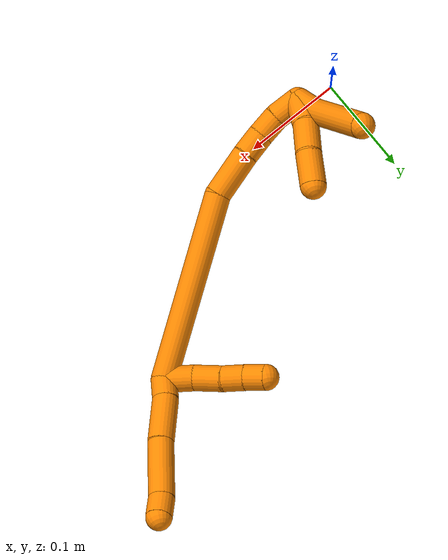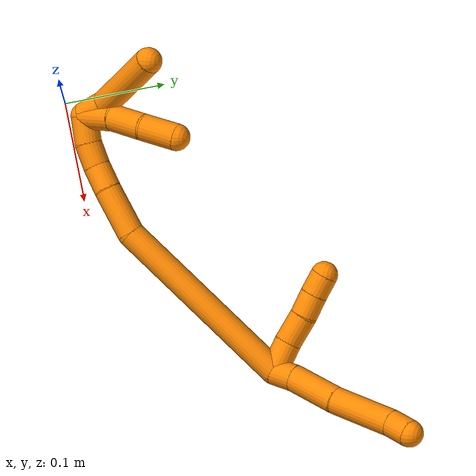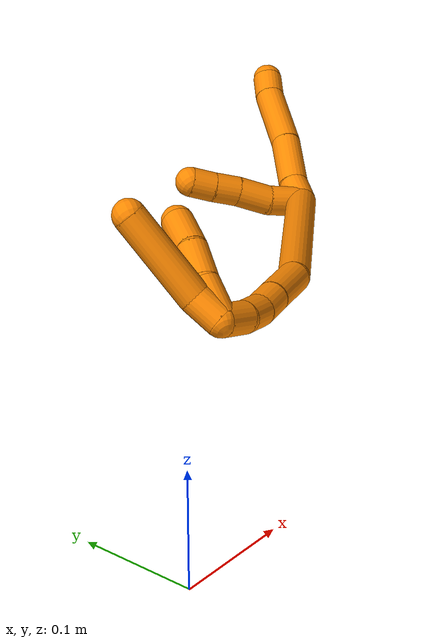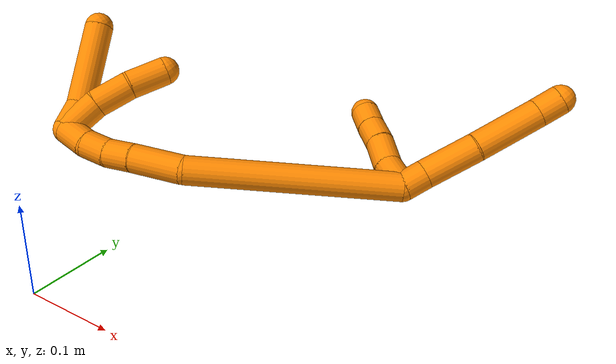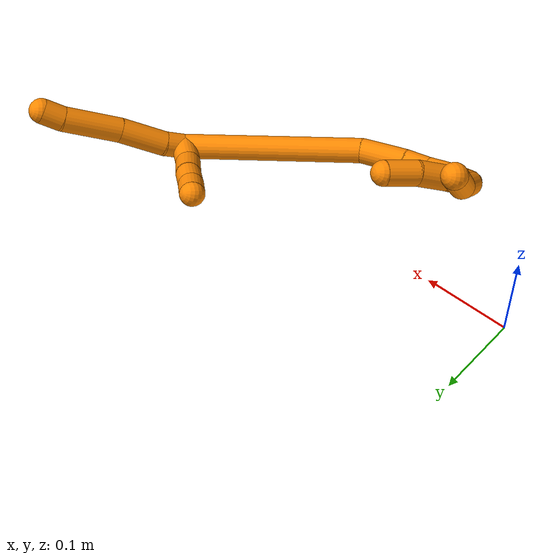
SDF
<sdf version="1.7">
 <world name="default">
  <model name="19">
   <static>0</static>
   <link name="19">
    <collision name="collision-cylinder-e_1_2_8">
     <pose>0.001761 0.000192 0.010538 -0.018198 0.165519 -0.00151</pose>
     <geometry><cylinder><radius>0.0125</radius><length>0.021372</length></cylinder></geometry>
     <surface>
      <friction><ode><mu>1.16</mu><mu2>1.16</mu2><slip1>0</slip1><slip2>0</slip2></ode></friction>
      <contact><ode><kp>1e+06</kp><kd>1</kd><max_vel>0</max_vel><min_depth>0.001</min_depth></ode></contact>
     </surface>
    </collision>
    <visual name="visual-cylinder-e_1_2_8">
     <pose>0.001761 0.000192 0.010538 -0.018198 0.165519 -0.00151</pose>
     <geometry><cylinder><radius>0.0125</radius><length>0.021372</length></cylinder></geometry>
     <material><ambient>0.996078 0.537255 0 1</ambient></material>
    </visual>
    <collision name="collision-cylinder-e_2_8_9">
     <pose>0.010205 -0.002349 0.043979 0.118752 0.282042 0.016878</pose>
     <geometry><cylinder><radius>0.0125</radius><length>0.048029</length></cylinder></geometry>
     <surface>
      <friction><ode><mu>1.16</mu><mu2>1.16</mu2><slip1>0</slip1><slip2>0</slip2></ode></friction>
      <contact><ode><kp>1e+06</kp><kd>1</kd><max_vel>0</max_vel><min_depth>0.001</min_depth></ode></contact>
     </surface>
    </collision>
    <visual name="visual-cylinder-e_2_8_9">
     <pose>0.010205 -0.002349 0.043979 0.118752 0.282042 0.016878</pose>
     <geometry><cylinder><radius>0.0125</radius><length>0.048029</length></cylinder></geometry>
     <material><ambient>0.996078 0.537255 0 1</ambient></material>
    </visual>
    <collision name="collision-cylinder-e_3_9_10">
     <pose>0.022837 -0.006057 0.095716 0.033797 0.203342 0.003448</pose>
     <geometry><cylinder><radius>0.0125</radius><length>0.058914</length></cylinder></geometry>
     <surface>
      <friction><ode><mu>1.16</mu><mu2>1.16</mu2><slip1>0</slip1><slip2>0</slip2></ode></friction>
      <contact><ode><kp>1e+06</kp><kd>1</kd><max_vel>0</max_vel><min_depth>0.001</min_depth></ode></contact>
     </surface>
    </collision>
    <visual name="visual-cylinder-e_3_9_10">
     <pose>0.022837 -0.006057 0.095716 0.033797 0.203342 0.003448</pose>
     <geometry><cylinder><radius>0.0125</radius><length>0.058914</length></cylinder></geometry>
     <material><ambient>0.996078 0.537255 0 1</ambient></material>
    </visual>
    <collision name="collision-cylinder-e_4_10_6">
     <pose>0.03174 -0.009053 0.134785 0.195007 0.275951 0.027163</pose>
     <geometry><cylinder><radius>0.0125</radius><length>0.021685</length></cylinder></geometry>
     <surface>
      <friction><ode><mu>1.16</mu><mu2>1.16</mu2><slip1>0</slip1><slip2>0</slip2></ode></friction>
      <contact><ode><kp>1e+06</kp><kd>1</kd><max_vel>0</max_vel><min_depth>0.001</min_depth></ode></contact>
     </surface>
    </collision>
    <visual name="visual-cylinder-e_4_10_6">
     <pose>0.03174 -0.009053 0.134785 0.195007 0.275951 0.027163</pose>
     <geometry><cylinder><radius>0.0125</radius><length>0.021685</length></cylinder></geometry>
     <material><ambient>0.996078 0.537255 0 1</ambient></material>
    </visual>
    <collision name="collision-cylinder-e_1_2_11">
     <pose>-0.013858 0.003381 0.003796 -0.727575 -1.2192 0.519727</pose>
     <geometry><cylinder><radius>0.0125</radius><length>0.029521</length></cylinder></geometry>
     <surface>
      <friction><ode><mu>1.16</mu><mu2>1.16</mu2><slip1>0</slip1><slip2>0</slip2></ode></friction>
      <contact><ode><kp>1e+06</kp><kd>1</kd><max_vel>0</max_vel><min_depth>0.001</min_depth></ode></contact>
     </surface>
    </collision>
    <visual name="visual-cylinder-e_1_2_11">
     <pose>-0.013858 0.003381 0.003796 -0.727575 -1.2192 0.519727</pose>
     <geometry><cylinder><radius>0.0125</radius><length>0.029521</length></cylinder></geometry>
     <material><ambient>0.996078 0.537255 0 1</ambient></material>
    </visual>
    <collision name="collision-cylinder-e_2_11_12">
     <pose>-0.040606 0.007728 0.013691 -0.157082 -1.12411 0.099056</pose>
     <geometry><cylinder><radius>0.0125</radius><length>0.028586</length></cylinder></geometry>
     <surface>
      <friction><ode><mu>1.16</mu><mu2>1.16</mu2><slip1>0</slip1><slip2>0</slip2></ode></friction>
      <contact><ode><kp>1e+06</kp><kd>1</kd><max_vel>0</max_vel><min_depth>0.001</min_depth></ode></contact>
     </surface>
    </collision>
    <visual name="visual-cylinder-e_2_11_12">
     <pose>-0.040606 0.007728 0.013691 -0.157082 -1.12411 0.099056</pose>
     <geometry><cylinder><radius>0.0125</radius><length>0.028586</length></cylinder></geometry>
     <material><ambient>0.996078 0.537255 0 1</ambient></material>
    </visual>
    <collision name="collision-cylinder-e_3_12_13">
     <pose>-0.063681 0.009902 0.023256 -0.335437 -1.22479 0.236764</pose>
     <geometry><cylinder><radius>0.0125</radius><length>0.021651</length></cylinder></geometry>
     <surface>
      <friction><ode><mu>1.16</mu><mu2>1.16</mu2><slip1>0</slip1><slip2>0</slip2></ode></friction>
      <contact><ode><kp>1e+06</kp><kd>1</kd><max_vel>0</max_vel><min_depth>0.001</min_depth></ode></contact>
     </surface>
    </collision>
    <visual name="visual-cylinder-e_3_12_13">
     <pose>-0.063681 0.009902 0.023256 -0.335437 -1.22479 0.236764</pose>
     <geometry><cylinder><radius>0.0125</radius><length>0.021651</length></cylinder></geometry>
     <material><ambient>0.996078 0.537255 0 1</ambient></material>
    </visual>
    <collision name="collision-cylinder-e_4_13_5">
     <pose>-0.083192 0.012041 0.030538 -0.239285 -1.17232 0.159312</pose>
     <geometry><cylinder><radius>0.0125</radius><length>0.020242</length></cylinder></geometry>
     <surface>
      <friction><ode><mu>1.16</mu><mu2>1.16</mu2><slip1>0</slip1><slip2>0</slip2></ode></friction>
      <contact><ode><kp>1e+06</kp><kd>1</kd><max_vel>0</max_vel><min_depth>0.001</min_depth></ode></contact>
     </surface>
    </collision>
    <visual name="visual-cylinder-e_4_13_5">
     <pose>-0.083192 0.012041 0.030538 -0.239285 -1.17232 0.159312</pose>
     <geometry><cylinder><radius>0.0125</radius><length>0.020242</length></cylinder></geometry>
     <material><ambient>0.996078 0.537255 0 1</ambient></material>
    </visual>
    <collision name="collision-cylinder-e_1_2_14">
     <pose>-0.055575 -0.026074 -0.066842 2.76967 -0.65905 -2.13573</pose>
     <geometry><cylinder><radius>0.0125</radius><length>0.181508</length></cylinder></geometry>
     <surface>
      <friction><ode><mu>1.16</mu><mu2>1.16</mu2><slip1>0</slip1><slip2>0</slip2></ode></friction>
      <contact><ode><kp>1e+06</kp><kd>1</kd><max_vel>0</max_vel><min_depth>0.001</min_depth></ode></contact>
     </surface>
    </collision>
    <visual name="visual-cylinder-e_1_2_14">
     <pose>-0.055575 -0.026074 -0.066842 2.76967 -0.65905 -2.13573</pose>
     <geometry><cylinder><radius>0.0125</radius><length>0.181508</length></cylinder></geometry>
     <material><ambient>0.996078 0.537255 0 1</ambient></material>
    </visual>
    <collision name="collision-cylinder-e_2_14_15">
     <pose>-0.130014 -0.055152 -0.146429 2.91003 -0.964058 -2.70412</pose>
     <geometry><cylinder><radius>0.0125</radius><length>0.045928</length></cylinder></geometry>
     <surface>
      <friction><ode><mu>1.16</mu><mu2>1.16</mu2><slip1>0</slip1><slip2>0</slip2></ode></friction>
      <contact><ode><kp>1e+06</kp><kd>1</kd><max_vel>0</max_vel><min_depth>0.001</min_depth></ode></contact>
     </surface>
    </collision>
    <visual name="visual-cylinder-e_2_14_15">
     <pose>-0.130014 -0.055152 -0.146429 2.91003 -0.964058 -2.70412</pose>
     <geometry><cylinder><radius>0.0125</radius><length>0.045928</length></cylinder></geometry>
     <material><ambient>0.996078 0.537255 0 1</ambient></material>
    </visual>
    <collision name="collision-cylinder-e_3_15_16">
     <pose>-0.158948 -0.058721 -0.165819 3.05694 -0.985763 -2.98422</pose>
     <geometry><cylinder><radius>0.0125</radius><length>0.024155</length></cylinder></geometry>
     <surface>
      <friction><ode><mu>1.16</mu><mu2>1.16</mu2><slip1>0</slip1><slip2>0</slip2></ode></friction>
      <contact><ode><kp>1e+06</kp><kd>1</kd><max_vel>0</max_vel><min_depth>0.001</min_depth></ode></contact>
     </surface>
    </collision>
    <visual name="visual-cylinder-e_3_15_16">
     <pose>-0.158948 -0.058721 -0.165819 3.05694 -0.985763 -2.98422</pose>
     <geometry><cylinder><radius>0.0125</radius><length>0.024155</length></cylinder></geometry>
     <material><ambient>0.996078 0.537255 0 1</ambient></material>
    </visual>
    <collision name="collision-cylinder-e_4_16_17">
     <pose>-0.179196 -0.061076 -0.177146 2.77627 -1.11324 -2.56445</pose>
     <geometry><cylinder><radius>0.0125</radius><length>0.022691</length></cylinder></geometry>
     <surface>
      <friction><ode><mu>1.16</mu><mu2>1.16</mu2><slip1>0</slip1><slip2>0</slip2></ode></friction>
      <contact><ode><kp>1e+06</kp><kd>1</kd><max_vel>0</max_vel><min_depth>0.001</min_depth></ode></contact>
     </surface>
    </collision>
    <visual name="visual-cylinder-e_4_16_17">
     <pose>-0.179196 -0.061076 -0.177146 2.77627 -1.11324 -2.56445</pose>
     <geometry><cylinder><radius>0.0125</radius><length>0.022691</length></cylinder></geometry>
     <material><ambient>0.996078 0.537255 0 1</ambient></material>
    </visual>
    <collision name="collision-cylinder-e_5_17_1">
     <pose>-0.201879 -0.064347 -0.184432 2.62466 -1.33563 -2.49471</pose>
     <geometry><cylinder><radius>0.0125</radius><length>0.025719</length></cylinder></geometry>
     <surface>
      <friction><ode><mu>1.16</mu><mu2>1.16</mu2><slip1>0</slip1><slip2>0</slip2></ode></friction>
      <contact><ode><kp>1e+06</kp><kd>1</kd><max_vel>0</max_vel><min_depth>0.001</min_depth></ode></contact>
     </surface>
    </collision>
    <visual name="visual-cylinder-e_5_17_1">
     <pose>-0.201879 -0.064347 -0.184432 2.62466 -1.33563 -2.49471</pose>
     <geometry><cylinder><radius>0.0125</radius><length>0.025719</length></cylinder></geometry>
     <material><ambient>0.996078 0.537255 0 1</ambient></material>
    </visual>
    <collision name="collision-cylinder-e_1_1_18">
     <pose>-0.220855 -0.066517 -0.176359 0.064473 -0.543854 -0.017983</pose>
     <geometry><cylinder><radius>0.0125</radius><length>0.025007</length></cylinder></geometry>
     <surface>
      <friction><ode><mu>1.16</mu><mu2>1.16</mu2><slip1>0</slip1><slip2>0</slip2></ode></friction>
      <contact><ode><kp>1e+06</kp><kd>1</kd><max_vel>0</max_vel><min_depth>0.001</min_depth></ode></contact>
     </surface>
    </collision>
    <visual name="visual-cylinder-e_1_1_18">
     <pose>-0.220855 -0.066517 -0.176359 0.064473 -0.543854 -0.017983</pose>
     <geometry><cylinder><radius>0.0125</radius><length>0.025007</length></cylinder></geometry>
     <material><ambient>0.996078 0.537255 0 1</ambient></material>
    </visual>
    <collision name="collision-cylinder-e_2_18_4">
     <pose>-0.248661 -0.079953 -0.137606 0.426157 -0.605326 -0.134916</pose>
     <geometry><cylinder><radius>0.0125</radius><length>0.074993</length></cylinder></geometry>
     <surface>
      <friction><ode><mu>1.16</mu><mu2>1.16</mu2><slip1>0</slip1><slip2>0</slip2></ode></friction>
      <contact><ode><kp>1e+06</kp><kd>1</kd><max_vel>0</max_vel><min_depth>0.001</min_depth></ode></contact>
     </surface>
    </collision>
    <visual name="visual-cylinder-e_2_18_4">
     <pose>-0.248661 -0.079953 -0.137606 0.426157 -0.605326 -0.134916</pose>
     <geometry><cylinder><radius>0.0125</radius><length>0.074993</length></cylinder></geometry>
     <material><ambient>0.996078 0.537255 0 1</ambient></material>
    </visual>
    <collision name="collision-cylinder-e_1_1_19">
     <pose>-0.214938 -0.067801 -0.170477 0.118621 -0.033164 -0.001969</pose>
     <geometry><cylinder><radius>0.0125</radius><length>0.033371</length></cylinder></geometry>
     <surface>
      <friction><ode><mu>1.16</mu><mu2>1.16</mu2><slip1>0</slip1><slip2>0</slip2></ode></friction>
      <contact><ode><kp>1e+06</kp><kd>1</kd><max_vel>0</max_vel><min_depth>0.001</min_depth></ode></contact>
     </surface>
    </collision>
    <visual name="visual-cylinder-e_1_1_19">
     <pose>-0.214938 -0.067801 -0.170477 0.118621 -0.033164 -0.001969</pose>
     <geometry><cylinder><radius>0.0125</radius><length>0.033371</length></cylinder></geometry>
     <material><ambient>0.996078 0.537255 0 1</ambient></material>
    </visual>
    <collision name="collision-cylinder-e_2_19_20">
     <pose>-0.212774 -0.070051 -0.137702 0.016997 0.165986 0.001414</pose>
     <geometry><cylinder><radius>0.0125</radius><length>0.032888</length></cylinder></geometry>
     <surface>
      <friction><ode><mu>1.16</mu><mu2>1.16</mu2><slip1>0</slip1><slip2>0</slip2></ode></friction>
      <contact><ode><kp>1e+06</kp><kd>1</kd><max_vel>0</max_vel><min_depth>0.001</min_depth></ode></contact>
     </surface>
    </collision>
    <visual name="visual-cylinder-e_2_19_20">
     <pose>-0.212774 -0.070051 -0.137702 0.016997 0.165986 0.001414</pose>
     <geometry><cylinder><radius>0.0125</radius><length>0.032888</length></cylinder></geometry>
     <material><ambient>0.996078 0.537255 0 1</ambient></material>
    </visual>
    <collision name="collision-cylinder-e_3_20_3">
     <pose>-0.207154 -0.06784 -0.105055 -0.150145 0.172931 -0.013039</pose>
     <geometry><cylinder><radius>0.0125</radius><length>0.03374</length></cylinder></geometry>
     <surface>
      <friction><ode><mu>1.16</mu><mu2>1.16</mu2><slip1>0</slip1><slip2>0</slip2></ode></friction>
      <contact><ode><kp>1e+06</kp><kd>1</kd><max_vel>0</max_vel><min_depth>0.001</min_depth></ode></contact>
     </surface>
    </collision>
    <visual name="visual-cylinder-e_3_20_3">
     <pose>-0.207154 -0.06784 -0.105055 -0.150145 0.172931 -0.013039</pose>
     <geometry><cylinder><radius>0.0125</radius><length>0.03374</length></cylinder></geometry>
     <material><ambient>0.996078 0.537255 0 1</ambient></material>
    </visual>
    <collision name="collision-sphere-3">
     <pose>-0.204252 -0.065355 -0.088623 0 -0 0</pose>
     <geometry><sphere><radius>0.0125</radius></sphere></geometry>
     <surface>
      <friction><ode><mu>1.16</mu><mu2>1.16</mu2><slip1>0</slip1><slip2>0</slip2></ode></friction>
      <contact><ode><kp>1e+06</kp><kd>1</kd><max_vel>0</max_vel><min_depth>0.001</min_depth></ode></contact>
     </surface>
    </collision>
    <visual name="visual-sphere-3">
     <pose>-0.204252 -0.065355 -0.088623 0 -0 0</pose>
     <geometry><sphere><radius>0.0125</radius></sphere></geometry>
     <material><ambient>0.996078 0.537255 0 1</ambient></material>
    </visual>
    <collision name="collision-sphere-20">
     <pose>-0.210057 -0.070326 -0.121486 0 -0 0</pose>
     <geometry><sphere><radius>0.0125</radius></sphere></geometry>
     <surface>
      <friction><ode><mu>1.16</mu><mu2>1.16</mu2><slip1>0</slip1><slip2>0</slip2></ode></friction>
      <contact><ode><kp>1e+06</kp><kd>1</kd><max_vel>0</max_vel><min_depth>0.001</min_depth></ode></contact>
     </surface>
    </collision>
    <visual name="visual-sphere-20">
     <pose>-0.210057 -0.070326 -0.121486 0 -0 0</pose>
     <geometry><sphere><radius>0.0125</radius></sphere></geometry>
     <material><ambient>0.996078 0.537255 0 1</ambient></material>
    </visual>
    <collision name="collision-sphere-19">
     <pose>-0.215491 -0.069775 -0.153918 0 -0 0</pose>
     <geometry><sphere><radius>0.0125</radius></sphere></geometry>
     <surface>
      <friction><ode><mu>1.16</mu><mu2>1.16</mu2><slip1>0</slip1><slip2>0</slip2></ode></friction>
      <contact><ode><kp>1e+06</kp><kd>1</kd><max_vel>0</max_vel><min_depth>0.001</min_depth></ode></contact>
     </surface>
    </collision>
    <visual name="visual-sphere-19">
     <pose>-0.215491 -0.069775 -0.153918 0 -0 0</pose>
     <geometry><sphere><radius>0.0125</radius></sphere></geometry>
     <material><ambient>0.996078 0.537255 0 1</ambient></material>
    </visual>
    <collision name="collision-sphere-11">
     <pose>-0.027715 0.006762 0.007593 0 -0 0</pose>
     <geometry><sphere><radius>0.0125</radius></sphere></geometry>
     <surface>
      <friction><ode><mu>1.16</mu><mu2>1.16</mu2><slip1>0</slip1><slip2>0</slip2></ode></friction>
      <contact><ode><kp>1e+06</kp><kd>1</kd><max_vel>0</max_vel><min_depth>0.001</min_depth></ode></contact>
     </surface>
    </collision>
    <visual name="visual-sphere-11">
     <pose>-0.027715 0.006762 0.007593 0 -0 0</pose>
     <geometry><sphere><radius>0.0125</radius></sphere></geometry>
     <material><ambient>0.996078 0.537255 0 1</ambient></material>
    </visual>
    <collision name="collision-sphere-6">
     <pose>0.034694 -0.011074 0.145019 0 -0 0</pose>
     <geometry><sphere><radius>0.0125</radius></sphere></geometry>
     <surface>
      <friction><ode><mu>1.16</mu><mu2>1.16</mu2><slip1>0</slip1><slip2>0</slip2></ode></friction>
      <contact><ode><kp>1e+06</kp><kd>1</kd><max_vel>0</max_vel><min_depth>0.001</min_depth></ode></contact>
     </surface>
    </collision>
    <visual name="visual-sphere-6">
     <pose>0.034694 -0.011074 0.145019 0 -0 0</pose>
     <geometry><sphere><radius>0.0125</radius></sphere></geometry>
     <material><ambient>0.996078 0.537255 0 1</ambient></material>
    </visual>
    <collision name="collision-sphere-10">
     <pose>0.028786 -0.007031 0.12455 0 -0 0</pose>
     <geometry><sphere><radius>0.0125</radius></sphere></geometry>
     <surface>
      <friction><ode><mu>1.16</mu><mu2>1.16</mu2><slip1>0</slip1><slip2>0</slip2></ode></friction>
      <contact><ode><kp>1e+06</kp><kd>1</kd><max_vel>0</max_vel><min_depth>0.001</min_depth></ode></contact>
     </surface>
    </collision>
    <visual name="visual-sphere-10">
     <pose>0.028786 -0.007031 0.12455 0 -0 0</pose>
     <geometry><sphere><radius>0.0125</radius></sphere></geometry>
     <material><ambient>0.996078 0.537255 0 1</ambient></material>
    </visual>
    <collision name="collision-sphere-9">
     <pose>0.016889 -0.005082 0.066883 0 -0 0</pose>
     <geometry><sphere><radius>0.0125</radius></sphere></geometry>
     <surface>
      <friction><ode><mu>1.16</mu><mu2>1.16</mu2><slip1>0</slip1><slip2>0</slip2></ode></friction>
      <contact><ode><kp>1e+06</kp><kd>1</kd><max_vel>0</max_vel><min_depth>0.001</min_depth></ode></contact>
     </surface>
    </collision>
    <visual name="visual-sphere-9">
     <pose>0.016889 -0.005082 0.066883 0 -0 0</pose>
     <geometry><sphere><radius>0.0125</radius></sphere></geometry>
     <material><ambient>0.996078 0.537255 0 1</ambient></material>
    </visual>
    <collision name="collision-sphere-2">
     <geometry><sphere><radius>0.0125</radius></sphere></geometry>
     <surface>
      <friction><ode><mu>1.16</mu><mu2>1.16</mu2><slip1>0</slip1><slip2>0</slip2></ode></friction>
      <contact><ode><kp>1e+06</kp><kd>1</kd><max_vel>0</max_vel><min_depth>0.001</min_depth></ode></contact>
     </surface>
    </collision>
    <visual name="visual-sphere-2">
     <geometry><sphere><radius>0.0125</radius></sphere></geometry>
     <material><ambient>0.996078 0.537255 0 1</ambient></material>
    </visual>
    <collision name="collision-sphere-8">
     <pose>0.003521 0.000384 0.021076 0 -0 0</pose>
     <geometry><sphere><radius>0.0125</radius></sphere></geometry>
     <surface>
      <friction><ode><mu>1.16</mu><mu2>1.16</mu2><slip1>0</slip1><slip2>0</slip2></ode></friction>
      <contact><ode><kp>1e+06</kp><kd>1</kd><max_vel>0</max_vel><min_depth>0.001</min_depth></ode></contact>
     </surface>
    </collision>
    <visual name="visual-sphere-8">
     <pose>0.003521 0.000384 0.021076 0 -0 0</pose>
     <geometry><sphere><radius>0.0125</radius></sphere></geometry>
     <material><ambient>0.996078 0.537255 0 1</ambient></material>
    </visual>
    <collision name="collision-sphere-12">
     <pose>-0.053497 0.008693 0.019789 0 -0 0</pose>
     <geometry><sphere><radius>0.0125</radius></sphere></geometry>
     <surface>
      <friction><ode><mu>1.16</mu><mu2>1.16</mu2><slip1>0</slip1><slip2>0</slip2></ode></friction>
      <contact><ode><kp>1e+06</kp><kd>1</kd><max_vel>0</max_vel><min_depth>0.001</min_depth></ode></contact>
     </surface>
    </collision>
    <visual name="visual-sphere-12">
     <pose>-0.053497 0.008693 0.019789 0 -0 0</pose>
     <geometry><sphere><radius>0.0125</radius></sphere></geometry>
     <material><ambient>0.996078 0.537255 0 1</ambient></material>
    </visual>
    <collision name="collision-sphere-13">
     <pose>-0.073864 0.011111 0.026723 0 -0 0</pose>
     <geometry><sphere><radius>0.0125</radius></sphere></geometry>
     <surface>
      <friction><ode><mu>1.16</mu><mu2>1.16</mu2><slip1>0</slip1><slip2>0</slip2></ode></friction>
      <contact><ode><kp>1e+06</kp><kd>1</kd><max_vel>0</max_vel><min_depth>0.001</min_depth></ode></contact>
     </surface>
    </collision>
    <visual name="visual-sphere-13">
     <pose>-0.073864 0.011111 0.026723 0 -0 0</pose>
     <geometry><sphere><radius>0.0125</radius></sphere></geometry>
     <material><ambient>0.996078 0.537255 0 1</ambient></material>
    </visual>
    <collision name="collision-sphere-5">
     <pose>-0.09252 0.012972 0.034353 0 -0 0</pose>
     <geometry><sphere><radius>0.0125</radius></sphere></geometry>
     <surface>
      <friction><ode><mu>1.16</mu><mu2>1.16</mu2><slip1>0</slip1><slip2>0</slip2></ode></friction>
      <contact><ode><kp>1e+06</kp><kd>1</kd><max_vel>0</max_vel><min_depth>0.001</min_depth></ode></contact>
     </surface>
    </collision>
    <visual name="visual-sphere-5">
     <pose>-0.09252 0.012972 0.034353 0 -0 0</pose>
     <geometry><sphere><radius>0.0125</radius></sphere></geometry>
     <material><ambient>0.996078 0.537255 0 1</ambient></material>
    </visual>
    <collision name="collision-sphere-14">
     <pose>-0.111149 -0.052147 -0.133685 0 -0 0</pose>
     <geometry><sphere><radius>0.0125</radius></sphere></geometry>
     <surface>
      <friction><ode><mu>1.16</mu><mu2>1.16</mu2><slip1>0</slip1><slip2>0</slip2></ode></friction>
      <contact><ode><kp>1e+06</kp><kd>1</kd><max_vel>0</max_vel><min_depth>0.001</min_depth></ode></contact>
     </surface>
    </collision>
    <visual name="visual-sphere-14">
     <pose>-0.111149 -0.052147 -0.133685 0 -0 0</pose>
     <geometry><sphere><radius>0.0125</radius></sphere></geometry>
     <material><ambient>0.996078 0.537255 0 1</ambient></material>
    </visual>
    <collision name="collision-sphere-15">
     <pose>-0.14888 -0.058157 -0.159173 0 -0 0</pose>
     <geometry><sphere><radius>0.0125</radius></sphere></geometry>
     <surface>
      <friction><ode><mu>1.16</mu><mu2>1.16</mu2><slip1>0</slip1><slip2>0</slip2></ode></friction>
      <contact><ode><kp>1e+06</kp><kd>1</kd><max_vel>0</max_vel><min_depth>0.001</min_depth></ode></contact>
     </surface>
    </collision>
    <visual name="visual-sphere-15">
     <pose>-0.14888 -0.058157 -0.159173 0 -0 0</pose>
     <geometry><sphere><radius>0.0125</radius></sphere></geometry>
     <material><ambient>0.996078 0.537255 0 1</ambient></material>
    </visual>
    <collision name="collision-sphere-16">
     <pose>-0.169017 -0.059285 -0.172464 0 -0 0</pose>
     <geometry><sphere><radius>0.0125</radius></sphere></geometry>
     <surface>
      <friction><ode><mu>1.16</mu><mu2>1.16</mu2><slip1>0</slip1><slip2>0</slip2></ode></friction>
      <contact><ode><kp>1e+06</kp><kd>1</kd><max_vel>0</max_vel><min_depth>0.001</min_depth></ode></contact>
     </surface>
    </collision>
    <visual name="visual-sphere-16">
     <pose>-0.169017 -0.059285 -0.172464 0 -0 0</pose>
     <geometry><sphere><radius>0.0125</radius></sphere></geometry>
     <material><ambient>0.996078 0.537255 0 1</ambient></material>
    </visual>
    <collision name="collision-sphere-17">
     <pose>-0.189374 -0.062866 -0.181827 0 -0 0</pose>
     <geometry><sphere><radius>0.0125</radius></sphere></geometry>
     <surface>
      <friction><ode><mu>1.16</mu><mu2>1.16</mu2><slip1>0</slip1><slip2>0</slip2></ode></friction>
      <contact><ode><kp>1e+06</kp><kd>1</kd><max_vel>0</max_vel><min_depth>0.001</min_depth></ode></contact>
     </surface>
    </collision>
    <visual name="visual-sphere-17">
     <pose>-0.189374 -0.062866 -0.181827 0 -0 0</pose>
     <geometry><sphere><radius>0.0125</radius></sphere></geometry>
     <material><ambient>0.996078 0.537255 0 1</ambient></material>
    </visual>
    <collision name="collision-sphere-1">
     <pose>-0.214385 -0.065828 -0.187037 0 -0 0</pose>
     <geometry><sphere><radius>0.0125</radius></sphere></geometry>
     <surface>
      <friction><ode><mu>1.16</mu><mu2>1.16</mu2><slip1>0</slip1><slip2>0</slip2></ode></friction>
      <contact><ode><kp>1e+06</kp><kd>1</kd><max_vel>0</max_vel><min_depth>0.001</min_depth></ode></contact>
     </surface>
    </collision>
    <visual name="visual-sphere-1">
     <pose>-0.214385 -0.065828 -0.187037 0 -0 0</pose>
     <geometry><sphere><radius>0.0125</radius></sphere></geometry>
     <material><ambient>0.996078 0.537255 0 1</ambient></material>
    </visual>
    <collision name="collision-sphere-18">
     <pose>-0.227324 -0.067207 -0.165682 0 -0 0</pose>
     <geometry><sphere><radius>0.0125</radius></sphere></geometry>
     <surface>
      <friction><ode><mu>1.16</mu><mu2>1.16</mu2><slip1>0</slip1><slip2>0</slip2></ode></friction>
      <contact><ode><kp>1e+06</kp><kd>1</kd><max_vel>0</max_vel><min_depth>0.001</min_depth></ode></contact>
     </surface>
    </collision>
    <visual name="visual-sphere-18">
     <pose>-0.227324 -0.067207 -0.165682 0 -0 0</pose>
     <geometry><sphere><radius>0.0125</radius></sphere></geometry>
     <material><ambient>0.996078 0.537255 0 1</ambient></material>
    </visual>
    <collision name="collision-sphere-4">
     <pose>-0.269998 -0.092699 -0.109529 0 -0 0</pose>
     <geometry><sphere><radius>0.0125</radius></sphere></geometry>
     <surface>
      <friction><ode><mu>1.16</mu><mu2>1.16</mu2><slip1>0</slip1><slip2>0</slip2></ode></friction>
      <contact><ode><kp>1e+06</kp><kd>1</kd><max_vel>0</max_vel><min_depth>0.001</min_depth></ode></contact>
     </surface>
    </collision>
    <visual name="visual-sphere-4">
     <pose>-0.269998 -0.092699 -0.109529 0 -0 0</pose>
     <geometry><sphere><radius>0.0125</radius></sphere></geometry>
     <material><ambient>0.996078 0.537255 0 1</ambient></material>
    </visual>
    <inertial>
     <pose>-0.102077 -0.03483 -0.063458 0 -0 0</pose>
     <mass>0.75</mass>
     <inertia>
      <ixx>-0.000508</ixx>
      <ixy>0</ixy>
      <ixz>0</ixz>
      <iyy>0.000106</iyy>
      <iyz>0</iyz>
      <izz>0.00052</izz>
     </inertia>
    </inertial>
   </link>
   <pose>0.323573 0.141676 0.16001 -1.10432 0.249415 -0.303157</pose>
  </model>
 </world>
</sdf>
